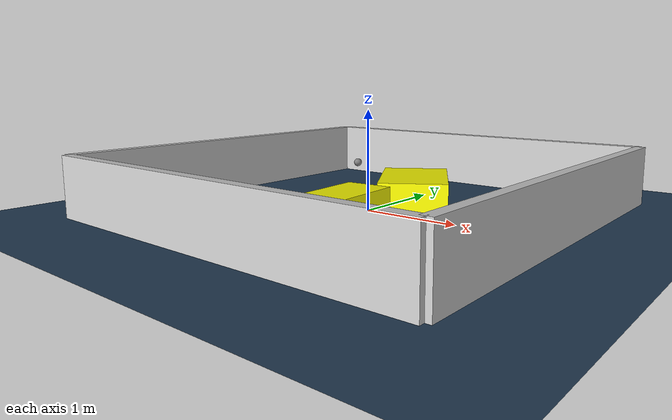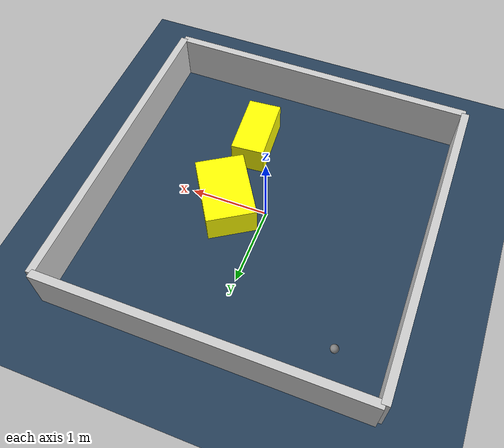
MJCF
<?xml version="1.0" ?>
<mujoco model="generated_environment">
  <option timestep="0.01" integrator="RK4" cone="elliptic"/>
  <default>
    <geom density="1"/>
  </default>
  <asset>
    <texture builtin="gradient" height="3072" rgb1="0.3 0.5 0.7" rgb2="0 0 0" type="skybox" width="512"/>
    <texture builtin="checker" height="300" mark="edge" markrgb="0.8 0.8 0.8" name="groundplane" rgb1="0.2 0.3 0.4" rgb2="0.1 0.2 0.3" type="2d" width="300"/>
    <material name="groundplane" reflectance="0.2" texrepeat="5 5" texture="groundplane" texuniform="true"/>
    <material name="robot" rgba="0.0 1.0 0.0 1"/>
  </asset>
  <worldbody>
    <light dir="0 0 -1" directional="true" pos="0 0 1.5"/>
    <geom condim="4" friction="1.0 0.005 0.001" material="groundplane" name="floor" size="0 0 0.05" type="plane"/>
    <body name="walls">
      <geom name="wall_1" condim="4" pos="-2.0 0.0 0.3" rgba="0.800000011920929 0.800000011920929 0.800000011920929 1.0" size="0.05 2.0 0.3" type="box"/>
      <geom name="wall_2" condim="4" pos="2.0 0.0 0.3" rgba="0.800000011920929 0.800000011920929 0.800000011920929 1.0" size="0.05 2.0 0.3" type="box"/>
      <geom name="wall_3" condim="4" pos="0.0 -2.0 0.3" rgba="0.800000011920929 0.800000011920929 0.800000011920929 1.0" size="2.0 0.05 0.3" type="box"/>
      <geom name="wall_4" condim="4" pos="0.0 2.0 0.3" rgba="0.800000011920929 0.800000011920929 0.800000011920929 1.0" size="2.0 0.05 0.3" type="box"/>
    </body>
    <body name="robot">
      <joint name="joint_x" type="slide" pos="0 0 0" axis="1 0 0"/>
      <joint name="joint_y" type="slide" pos="0 0 0" axis="0 1 0"/>
      <geom name="robot" type="sphere" pos="-1.3548186357076886 1.4730054692357681 0.2" size="0.05" mass="5." friction="1.0 0.005 0.0001" condim="4"/>
      <site name="sensor_ball"/>
    </body>
    <body name="obstacle_1_movable">
      <geom name="obstacle_1_movable" condim="4" pos="0.5178604410581056 -0.999903677749648 0.2" euler="0 0 4.568185115291086" friction="1.0 0.005 0.001" rgba="1 1 0 1" size="0.21426851303329086 0.41302314377366706 0.2" type="box" mass="0.1"/>
      <joint type="free"/>
    </body>
    <body name="obstacle_2_movable">
      <geom name="obstacle_2_movable" condim="4" pos="0.5192118153110956 0.04860137147585397 0.2" euler="0 0 122.67460162752414" friction="1.0 0.005 0.001" rgba="1 1 0 1" size="0.4501707618967219 0.3101910748305525 0.2" type="box" mass="0.1"/>
      <joint type="free"/>
    </body>
  </worldbody>
  <actuator>
    <motor name="actuator_x" joint="joint_x" gear="1" ctrlrange="-1 1"/>
    <motor name="actuator_y" joint="joint_y" gear="1" ctrlrange="-1 1"/>
  </actuator>
</mujoco>
